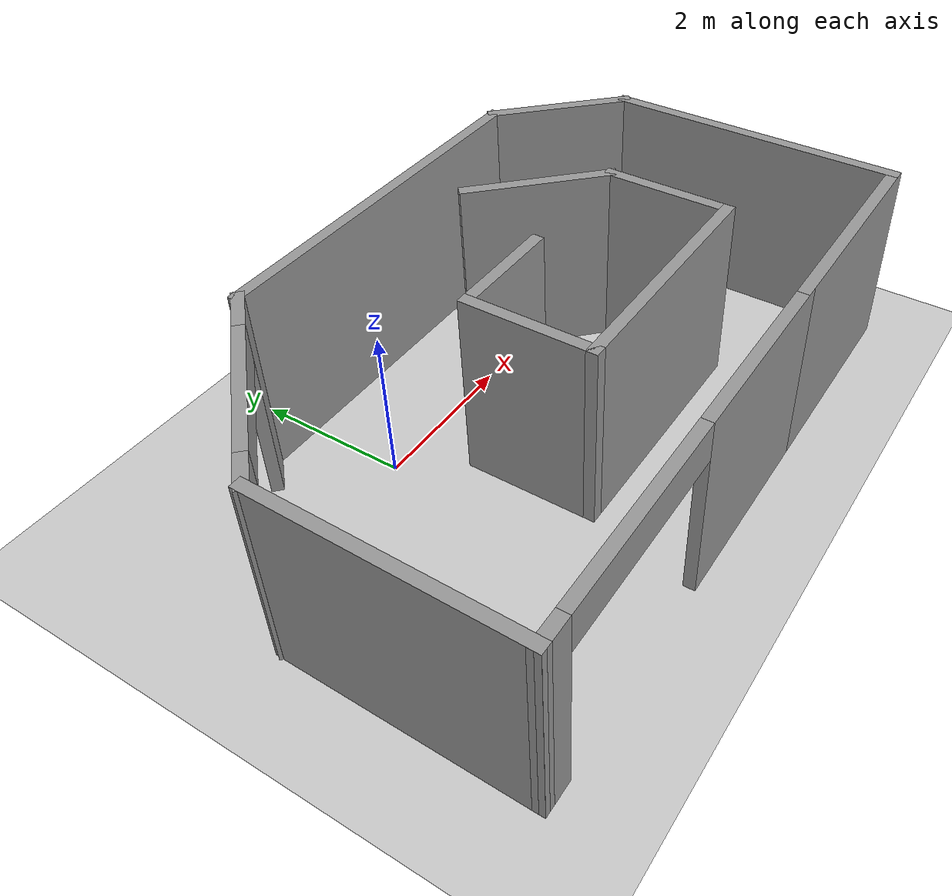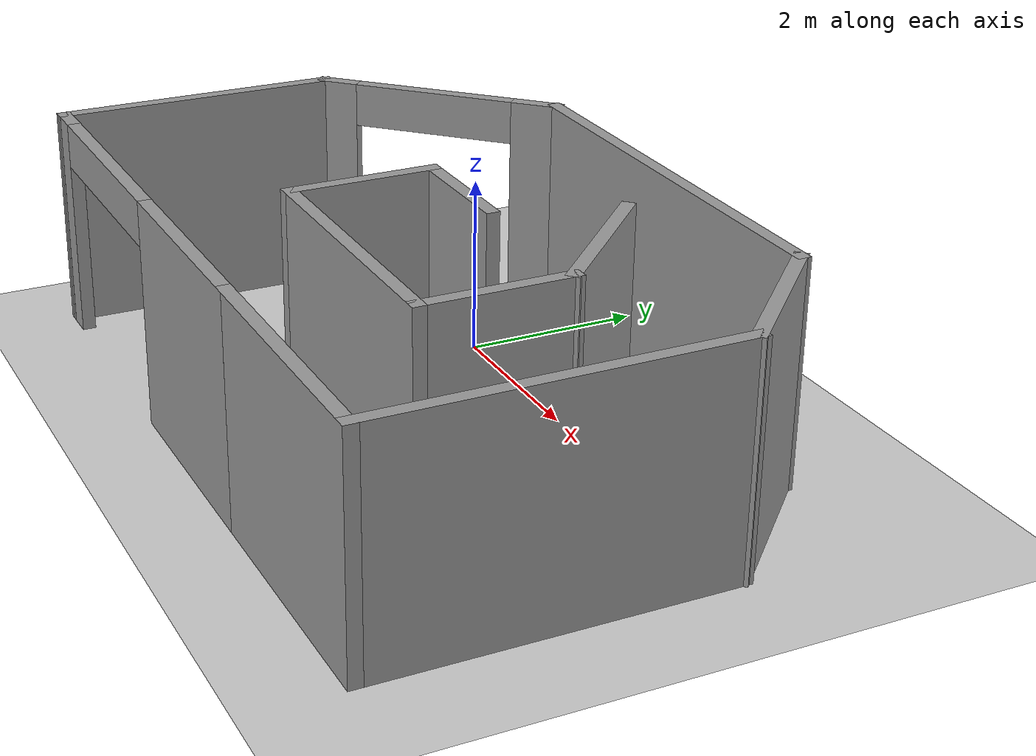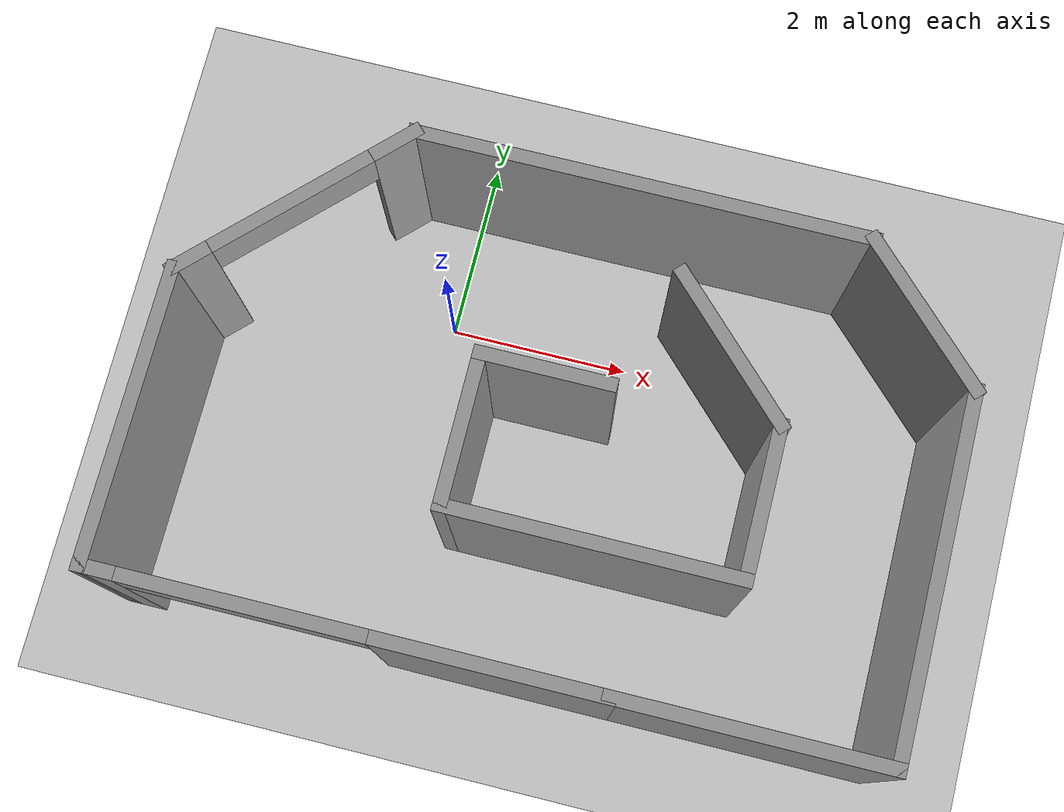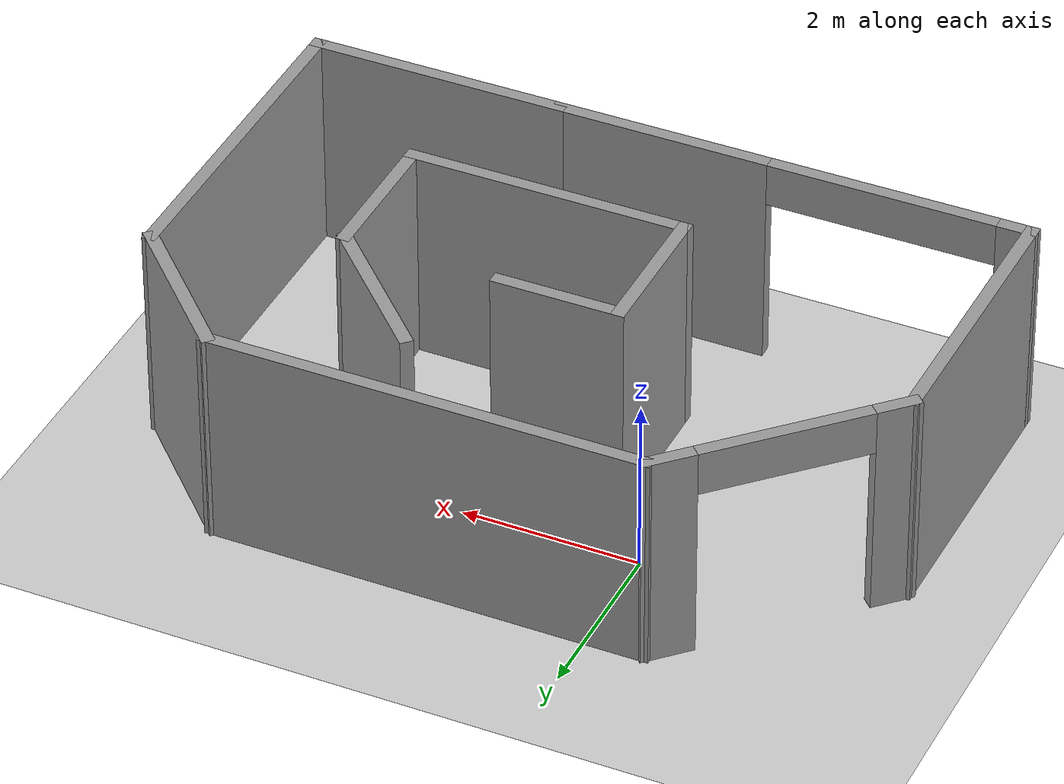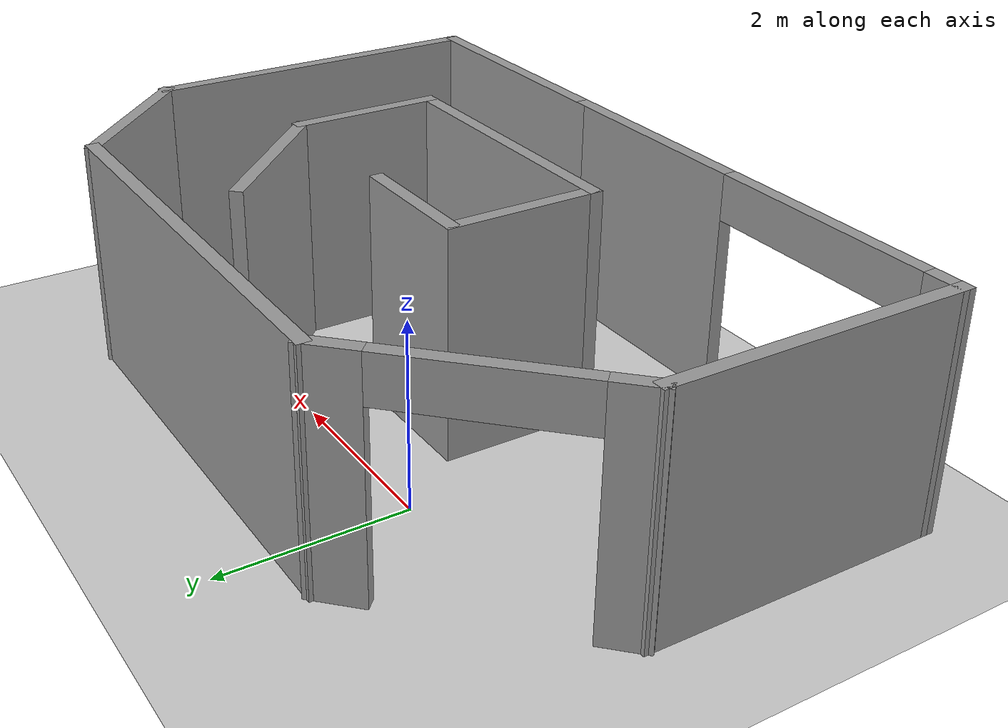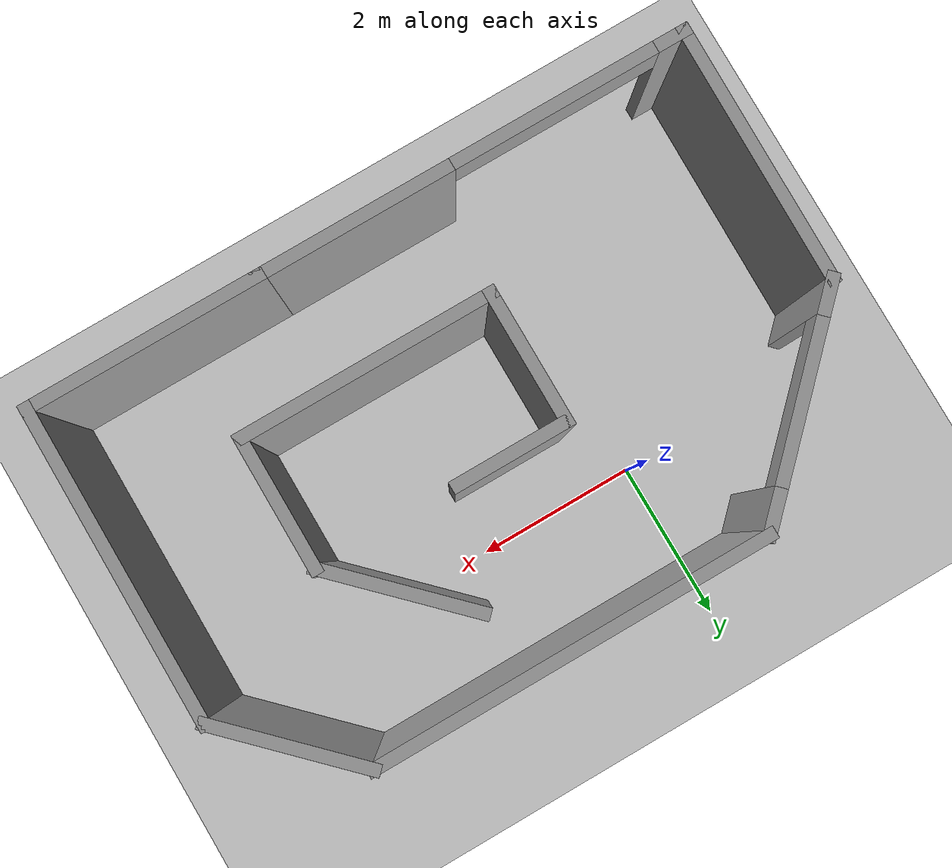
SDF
<sdf version="1.7">
 <world name="default">
  <light name="sun" type="directional">
   <pose>0 0 10 0 -0 0</pose>
   <diffuse>0.8 0.8 0.8 1</diffuse>
   <specular>0.2 0.2 0.2 1</specular>
   <attenuation>
    <range>1000</range>
    <constant>0.9</constant>
    <linear>0.01</linear>
    <quadratic>0.001</quadratic>
   </attenuation>
   <direction>-0.5 0.1 -0.9</direction>
   <spot><inner_angle>0</inner_angle><outer_angle>0</outer_angle><falloff>0</falloff></spot>
  </light>
  <model name="ground_plane">
   <static>1</static>
   <link name="link">
    <collision name="collision">
     <geometry><plane><normal>0 0 1</normal><size>100 100</size></plane></geometry>
     <surface><friction><ode><mu>100</mu><mu2>50</mu2></ode></friction></surface>
    </collision>
    <visual name="visual">
     <cast_shadows>0</cast_shadows>
     <geometry><plane><normal>0 0 1</normal><size>100 100</size></plane></geometry>
     <material>
      <script><uri>file://media/materials/scripts/gazebo.material</uri><name>Gazebo/Grey</name></script>
     </material>
    </visual>
   </link>
  </model>
  <gravity>0 0 -9.8</gravity>
  <magnetic_field>6e-06 2.3e-05 -4.2e-05</magnetic_field>
  <atmosphere type="adiabatic"/>
  <physics type="ode">
   <max_step_size>0.001</max_step_size>
   <real_time_factor>1</real_time_factor>
   <real_time_update_rate>1000</real_time_update_rate>
  </physics>
  <scene><ambient>0.4 0.4 0.4 1</ambient><background>0.7 0.7 0.7 1</background><shadows>1</shadows></scene>
  <audio><device>default</device></audio>
  <spherical_coordinates>
   <surface_model>EARTH_WGS84</surface_model>
   <latitude_deg>0</latitude_deg>
   <longitude_deg>0</longitude_deg>
   <elevation>0</elevation>
   <heading_deg>0</heading_deg>
  </spherical_coordinates>
  <model name="Mundo1.world">
   <pose>1.42728 -0.471307 0 0 -0 0</pose>
   <link name="Wall_0">
    <collision name="Wall_0_Collision">
     <geometry><box><size>5 0.15 2.5</size></box></geometry>
     <pose>0 0 1.25 0 -0 0</pose>
    </collision>
    <visual name="Wall_0_Visual">
     <pose>0 0 1.25 0 -0 0</pose>
     <geometry><box><size>5 0.15 2.5</size></box></geometry>
     <material>
      <script><uri>file://media/materials/scripts/gazebo.material</uri><name>Gazebo/Grey</name></script>
      <ambient>1 1 1 1</ambient>
     </material>
     <meta><layer>0</layer></meta>
    </visual>
    <pose>0.353554 1.80189 0 0 -0 0</pose>
   </link>
   <link name="Wall_1">
    <collision name="Wall_1_Collision">
     <geometry><box><size>2 0.15 2.5</size></box></geometry>
     <pose>0 0 1.25 0 -0 0</pose>
    </collision>
    <visual name="Wall_1_Visual">
     <pose>0 0 1.25 0 -0 0</pose>
     <geometry><box><size>2 0.15 2.5</size></box></geometry>
     <material>
      <script><uri>file://media/materials/scripts/gazebo.material</uri><name>Gazebo/Grey</name></script>
      <ambient>1 1 1 1</ambient>
     </material>
     <meta><layer>0</layer></meta>
    </visual>
    <pose>3.43263 1.14782 0 0 -0 -0.785398</pose>
   </link>
   <link name="Wall_10">
    <collision name="Wall_10_Collision">
     <geometry><box><size>1.75 0.15 2.5</size></box></geometry>
     <pose>0 0 1.25 0 -0 0</pose>
    </collision>
    <visual name="Wall_10_Visual">
     <pose>0 0 1.25 0 -0 0</pose>
     <geometry><box><size>1.75 0.15 2.5</size></box></geometry>
     <material>
      <script><uri>file://media/materials/scripts/gazebo.material</uri><name>Gazebo/Grey</name></script>
      <ambient>1 1 1 1</ambient>
     </material>
     <meta><layer>0</layer></meta>
    </visual>
    <pose>-0.831299 -1.12826 0 0 -0 1.5708</pose>
   </link>
   <link name="Wall_11">
    <collision name="Wall_11_Collision">
     <geometry><box><size>1.5 0.15 2.5</size></box></geometry>
     <pose>0 0 1.25 0 -0 0</pose>
    </collision>
    <visual name="Wall_11_Visual">
     <pose>0 0 1.25 0 -0 0</pose>
     <geometry><box><size>1.5 0.15 2.5</size></box></geometry>
     <material>
      <script><uri>file://media/materials/scripts/gazebo.material</uri><name>Gazebo/Grey</name></script>
      <ambient>1 1 1 1</ambient>
     </material>
     <meta><layer>0</layer></meta>
    </visual>
    <pose>-0.156299 -0.328258 0 0 -0 0</pose>
   </link>
   <link name="Wall_13">
    <pose>-3.07907 0.794263 0 0 -0 -2.35619</pose>
    <visual name="Wall_13_Visual_0">
     <pose>-1.20159 0 1.25 0 -0 0</pose>
     <geometry><box><size>0.596816 0.15 2.5</size></box></geometry>
     <material>
      <script><uri>file://media/materials/scripts/gazebo.material</uri><name>Gazebo/Grey</name></script>
      <ambient>1 1 1 1</ambient>
     </material>
     <meta><layer>0</layer></meta>
    </visual>
    <collision name="Wall_13_Collision_0">
     <geometry><box><size>0.596816 0.15 2.5</size></box></geometry>
     <pose>-1.20159 0 1.25 0 -0 0</pose>
    </collision>
    <visual name="Wall_13_Visual_1">
     <pose>1.25045 0 1.25 0 -0 0</pose>
     <geometry><box><size>0.499092 0.15 2.5</size></box></geometry>
     <material>
      <script><uri>file://media/materials/scripts/gazebo.material</uri><name>Gazebo/Grey</name></script>
      <ambient>1 1 1 1</ambient>
     </material>
     <meta><layer>0</layer></meta>
    </visual>
    <collision name="Wall_13_Collision_1">
     <geometry><box><size>0.499092 0.15 2.5</size></box></geometry>
     <pose>1.25045 0 1.25 0 -0 0</pose>
    </collision>
    <visual name="Wall_13_Visual_2">
     <pose>0.048862 0 2.25 0 -0 0</pose>
     <geometry><box><size>1.90409 0.15 0.5</size></box></geometry>
     <material>
      <script><uri>file://media/materials/scripts/gazebo.material</uri><name>Gazebo/Grey</name></script>
      <ambient>1 1 1 1</ambient>
     </material>
     <meta><layer>0</layer></meta>
    </visual>
    <collision name="Wall_13_Collision_2">
     <geometry><box><size>1.90409 0.15 0.5</size></box></geometry>
     <pose>0.048862 0 2.25 0 -0 0</pose>
    </collision>
   </link>
   <link name="Wall_14">
    <collision name="Wall_14_Collision">
     <geometry><box><size>3.29301 0.15 2.5</size></box></geometry>
     <pose>0 0 1.25 0 -0 0</pose>
    </collision>
    <visual name="Wall_14_Visual">
     <pose>0 0 1.25 0 -0 0</pose>
     <geometry><box><size>3.29301 0.15 2.5</size></box></geometry>
     <material>
      <script><uri>file://media/materials/scripts/gazebo.material</uri><name>Gazebo/Grey</name></script>
      <ambient>1 1 1 1</ambient>
     </material>
     <meta><layer>0</layer></meta>
    </visual>
    <pose>-4.1 -1.78481 0 0 -0 -1.57926</pose>
   </link>
   <link name="Wall_16">
    <pose>-1.4383 -3.35626 0 0 -0 0</pose>
    <visual name="Wall_16_Visual_0">
     <pose>-2.53124 0 1.25 0 -0 0</pose>
     <geometry><box><size>0.43752 0.15 2.5</size></box></geometry>
     <material>
      <script><uri>file://media/materials/scripts/gazebo.material</uri><name>Gazebo/Grey</name></script>
      <ambient>1 1 1 1</ambient>
     </material>
     <meta><layer>0</layer></meta>
    </visual>
    <collision name="Wall_16_Collision_0">
     <geometry><box><size>0.43752 0.15 2.5</size></box></geometry>
     <pose>-2.53124 0 1.25 0 -0 0</pose>
    </collision>
    <visual name="Wall_16_Visual_1">
     <pose>1.50376 0 1.25 0 -0 0</pose>
     <geometry><box><size>2.49248 0.15 2.5</size></box></geometry>
     <material>
      <script><uri>file://media/materials/scripts/gazebo.material</uri><name>Gazebo/Grey</name></script>
      <ambient>1 1 1 1</ambient>
     </material>
     <meta><layer>0</layer></meta>
    </visual>
    <collision name="Wall_16_Collision_1">
     <geometry><box><size>2.49248 0.15 2.5</size></box></geometry>
     <pose>1.50376 0 1.25 0 -0 0</pose>
    </collision>
    <visual name="Wall_16_Visual_2">
     <pose>-1.02748 0 2.25 0 -0 0</pose>
     <geometry><box><size>2.57 0.15 0.5</size></box></geometry>
     <material>
      <script><uri>file://media/materials/scripts/gazebo.material</uri><name>Gazebo/Grey</name></script>
      <ambient>1 1 1 1</ambient>
     </material>
     <meta><layer>0</layer></meta>
    </visual>
    <collision name="Wall_16_Collision_2">
     <geometry><box><size>2.57 0.15 0.5</size></box></geometry>
     <pose>-1.02748 0 2.25 0 -0 0</pose>
    </collision>
   </link>
   <link name="Wall_3">
    <collision name="Wall_3_Collision">
     <geometry><box><size>4 0.15 2.5</size></box></geometry>
     <pose>0 0 1.25 0 -0 0</pose>
    </collision>
    <visual name="Wall_3_Visual">
     <pose>0 0 1.25 0 -0 0</pose>
     <geometry><box><size>4 0.15 2.5</size></box></geometry>
     <material>
      <script><uri>file://media/materials/scripts/gazebo.material</uri><name>Gazebo/Grey</name></script>
      <ambient>1 1 1 1</ambient>
     </material>
     <meta><layer>0</layer></meta>
    </visual>
    <pose>4.0867 -1.43126 0 0 -0 -1.5708</pose>
   </link>
   <link name="Wall_4">
    <collision name="Wall_4_Collision">
     <geometry><box><size>3 0.15 2.5</size></box></geometry>
     <pose>0 0 1.25 0 -0 0</pose>
    </collision>
    <visual name="Wall_4_Visual">
     <pose>0 0 1.25 0 -0 0</pose>
     <geometry><box><size>3 0.15 2.5</size></box></geometry>
     <material>
      <script><uri>file://media/materials/scripts/gazebo.material</uri><name>Gazebo/Grey</name></script>
      <ambient>1 1 1 1</ambient>
     </material>
     <meta><layer>0</layer></meta>
    </visual>
    <pose>2.6617 -3.35626 0 0 -0 3.14159</pose>
   </link>
   <link name="Wall_6">
    <collision name="Wall_6_Collision">
     <geometry><box><size>2 0.15 2.5</size></box></geometry>
     <pose>0 0 1.25 0 -0 0</pose>
    </collision>
    <visual name="Wall_6_Visual">
     <pose>0 0 1.25 0 -0 0</pose>
     <geometry><box><size>2 0.15 2.5</size></box></geometry>
     <material>
      <script><uri>file://media/materials/scripts/gazebo.material</uri><name>Gazebo/Grey</name></script>
      <ambient>1 1 1 1</ambient>
     </material>
     <meta><layer>0</layer></meta>
    </visual>
    <pose>1.61463 0.325816 0 0 -0 -0.785398</pose>
   </link>
   <link name="Wall_7">
    <collision name="Wall_7_Collision">
     <geometry><box><size>1.75 0.15 2.5</size></box></geometry>
     <pose>0 0 1.25 0 -0 0</pose>
    </collision>
    <visual name="Wall_7_Visual">
     <pose>0 0 1.25 0 -0 0</pose>
     <geometry><box><size>1.75 0.15 2.5</size></box></geometry>
     <material>
      <script><uri>file://media/materials/scripts/gazebo.material</uri><name>Gazebo/Grey</name></script>
      <ambient>1 1 1 1</ambient>
     </material>
     <meta><layer>0</layer></meta>
    </visual>
    <pose>2.2687 -1.12826 0 0 -0 -1.5708</pose>
   </link>
   <link name="Wall_8">
    <collision name="Wall_8_Collision">
     <geometry><box><size>3.25 0.15 2.5</size></box></geometry>
     <pose>0 0 1.25 0 -0 0</pose>
    </collision>
    <visual name="Wall_8_Visual">
     <pose>0 0 1.25 0 -0 0</pose>
     <geometry><box><size>3.25 0.15 2.5</size></box></geometry>
     <material>
      <script><uri>file://media/materials/scripts/gazebo.material</uri><name>Gazebo/Grey</name></script>
      <ambient>1 1 1 1</ambient>
     </material>
     <meta><layer>0</layer></meta>
    </visual>
    <pose>0.718701 -1.92826 0 0 -0 3.14159</pose>
   </link>
   <static>1</static>
  </model>
 </world>
</sdf>
